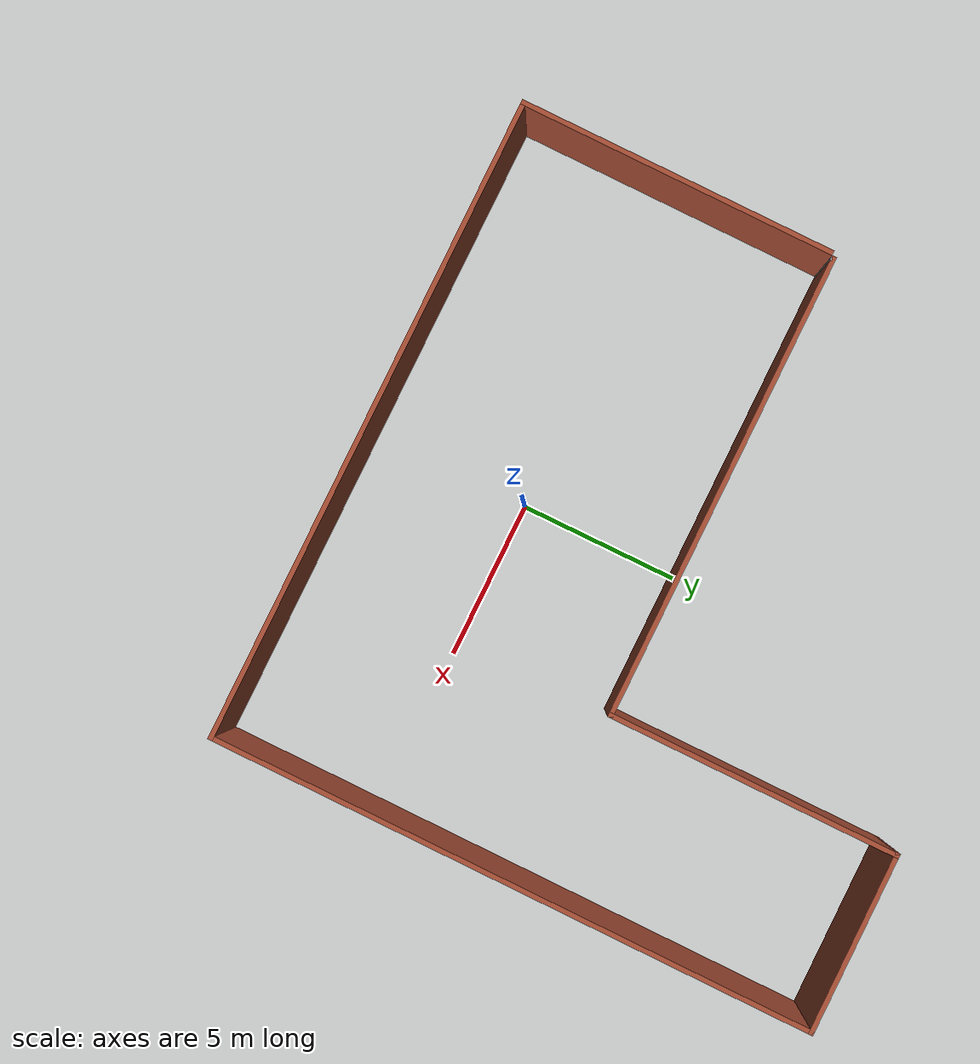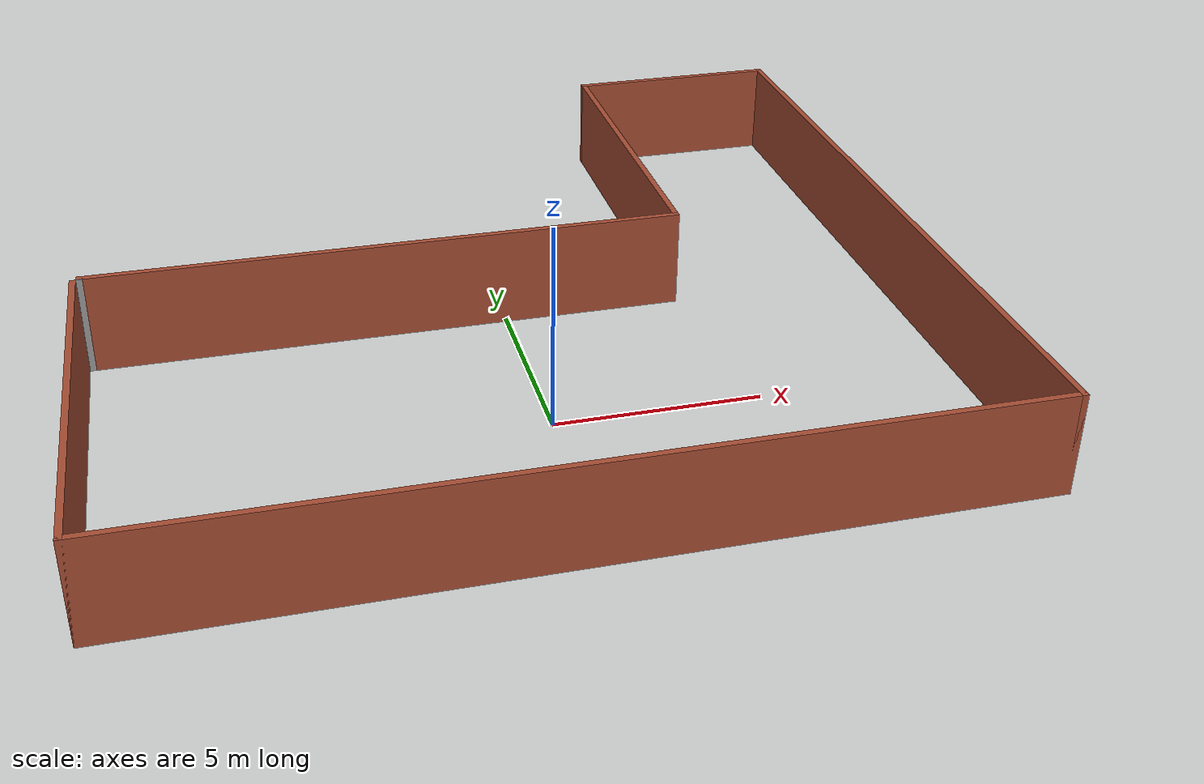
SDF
<?xml version='1.0'?>
<sdf version='1.6'>
  <model name='rvo_world'>
    <pose frame=''>-0.170764 4.48625 0 0 -0 0</pose>
    <link name='Wall_1'>
      <collision name='Wall_1_Collision'>
        <geometry>
          <box>
            <size>10 0.15 2.5</size>
          </box>
        </geometry>
        <pose frame=''>0 0 1.25 0 -0 0</pose>
      </collision>
      <visual name='Wall_1_Visual'>
        <pose frame=''>0 0 1.25 0 -0 0</pose>
        <geometry>
          <box>
            <size>10 0.15 2.5</size>
          </box>
        </geometry>
        <material>
          <script>
            <uri>file://media/materials/scripts/gazebo.material</uri>
            <name>Gazebo/Bricks</name>
          </script>
          <ambient>1 1 1 1</ambient>
        </material>
        <meta>
          <layer>0</layer>
        </meta>
      </visual>
      <pose frame=''>-10.175 -4.625 0 0 -0 -1.5708</pose>
    </link>
    <link name='Wall_2'>
      <collision name='Wall_2_Collision'>
        <geometry>
          <box>
            <size>20.5 0.15 2.5</size>
          </box>
        </geometry>
        <pose frame=''>0 0 1.25 0 -0 0</pose>
      </collision>
      <visual name='Wall_2_Visual'>
        <pose frame=''>0 0 1.25 0 -0 0</pose>
        <geometry>
          <box>
            <size>20.5 0.15 2.5</size>
          </box>
        </geometry>
        <material>
          <script>
            <uri>file://media/materials/scripts/gazebo.material</uri>
            <name>Gazebo/Bricks</name>
          </script>
          <ambient>1 1 1 1</ambient>
        </material>
        <meta>
          <layer>0</layer>
        </meta>
      </visual>
      <pose frame=''>-0 -9.55 0 0 -0 0</pose>
    </link>
    <link name='Wall_3'>
      <collision name='Wall_3_Collision'>
        <geometry>
          <box>
            <size>19.25 0.15 2.5</size>
          </box>
        </geometry>
        <pose frame=''>0 0 1.25 0 -0 0</pose>
      </collision>
      <visual name='Wall_3_Visual'>
        <pose frame=''>0 0 1.25 0 -0 0</pose>
        <geometry>
          <box>
            <size>19.25 0.15 2.5</size>
          </box>
        </geometry>
        <material>
          <script>
            <uri>file://media/materials/scripts/gazebo.material</uri>
            <name>Gazebo/Bricks</name>
          </script>
          <ambient>1 1 1 1</ambient>
        </material>
        <meta>
          <layer>0</layer>
        </meta>
      </visual>
      <pose frame=''>10.175 0 0 0 -0 1.5708</pose>
    </link>
    <link name='Wall_5'>
      <collision name='Wall_5_Collision'>
        <geometry>
          <box>
            <size>5.75 0.15 2.5</size>
          </box>
        </geometry>
        <pose frame=''>0 0 1.25 0 -0 0</pose>
      </collision>
      <visual name='Wall_5_Visual'>
        <pose frame=''>0 0 1.25 0 -0 0</pose>
        <geometry>
          <box>
            <size>5.75 0.15 2.5</size>
          </box>
        </geometry>
        <material>
          <script>
            <uri>file://media/materials/scripts/gazebo.material</uri>
            <name>Gazebo/Bricks</name>
          </script>
          <ambient>1 1 1 1</ambient>
        </material>
        <meta>
          <layer>0</layer>
        </meta>
      </visual>
      <pose frame=''>7.375 9.55 0 0 -0 3.14159</pose>
    </link>
    <link name='Wall_6'>
      <collision name='Wall_6_Collision'>
        <geometry>
          <box>
            <size>9.25 0.15 2.5</size>
          </box>
        </geometry>
        <pose frame=''>0 0 1.25 0 -0 0</pose>
      </collision>
      <visual name='Wall_6_Visual'>
        <pose frame=''>0 0 1.25 0 -0 0</pose>
        <geometry>
          <box>
            <size>9.25 0.15 2.5</size>
          </box>
        </geometry>
        <material>
          <script>
            <uri>file://media/materials/scripts/gazebo.material</uri>
            <name>Gazebo/Bricks</name>
          </script>
          <ambient>1 1 1 1</ambient>
        </material>
        <meta>
          <layer>0</layer>
        </meta>
      </visual>
      <pose frame=''>4.575 5 0 0 -0 -1.5708</pose>
    </link>
    <link name='Wall_7'>
      <collision name='Wall_7_Collision'>
        <geometry>
          <box>
            <size>14.75 0.15 2.5</size>
          </box>
        </geometry>
        <pose frame=''>0 0 1.25 0 -0 0</pose>
      </collision>
      <visual name='Wall_7_Visual'>
        <pose frame=''>0 0 1.25 0 -0 0</pose>
        <geometry>
          <box>
            <size>14.75 0.15 2.5</size>
          </box>
        </geometry>
        <material>
          <script>
            <uri>file://media/materials/scripts/gazebo.material</uri>
            <name>Gazebo/Bricks</name>
          </script>
          <ambient>1 1 1 1</ambient>
        </material>
        <meta>
          <layer>0</layer>
        </meta>
      </visual>
      <pose frame=''>-2.725 0.450001 0 0 -0 3.14159</pose>
    </link>
    <link name='Wall_8'>
      <collision name='Wall_8_Collision'>
        <geometry>
          <box>
            <size>0.15 0.15 2.5</size>
          </box>
        </geometry>
        <pose frame=''>0 0 1.25 0 -0 0</pose>
      </collision>
      <visual name='Wall_8_Visual'>
        <pose frame=''>0 0 1.25 0 -0 0</pose>
        <geometry>
          <box>
            <size>0.15 0.15 2.5</size>
          </box>
        </geometry>
        <material>
          <script>
            <uri>file://media/materials/scripts/gazebo.material</uri>
            <name>Gazebo/Grey</name>
          </script>
          <ambient>1 1 1 1</ambient>
        </material>
        <meta>
          <layer>0</layer>
        </meta>
      </visual>
      <pose frame=''>-10.025 0.450001 0 0 -0 0</pose>
    </link>
    <link name='Wall_9'>
      <collision name='Wall_9_Collision'>
        <geometry>
          <box>
            <size>0.15 0.15 2.5</size>
          </box>
        </geometry>
        <pose frame=''>0 0 1.25 0 -0 0</pose>
      </collision>
      <visual name='Wall_9_Visual'>
        <pose frame=''>0 0 1.25 0 -0 0</pose>
        <geometry>
          <box>
            <size>0.15 0.15 2.5</size>
          </box>
        </geometry>
        <material>
          <script>
            <uri>file://media/materials/scripts/gazebo.material</uri>
            <name>Gazebo/Grey</name>
          </script>
          <ambient>1 1 1 1</ambient>
        </material>
        <meta>
          <layer>0</layer>
        </meta>
      </visual>
      <pose frame=''>-10.025 0.450001 0 0 -0 0</pose>
    </link>
    <static>1</static>
  </model>
</sdf>
